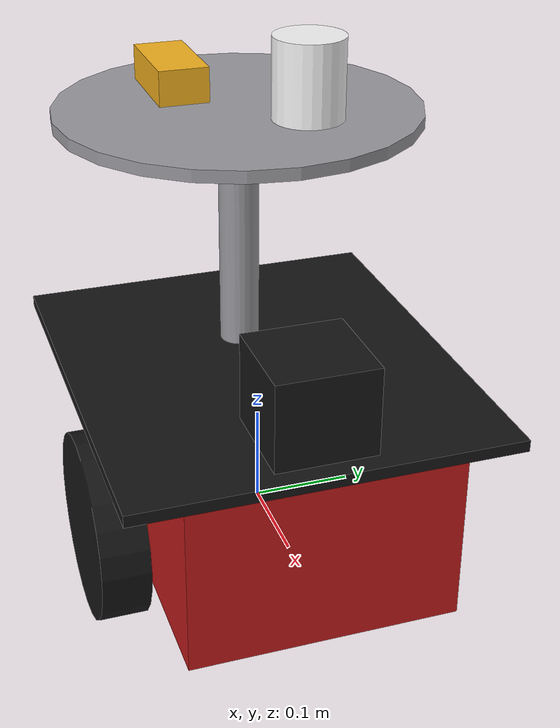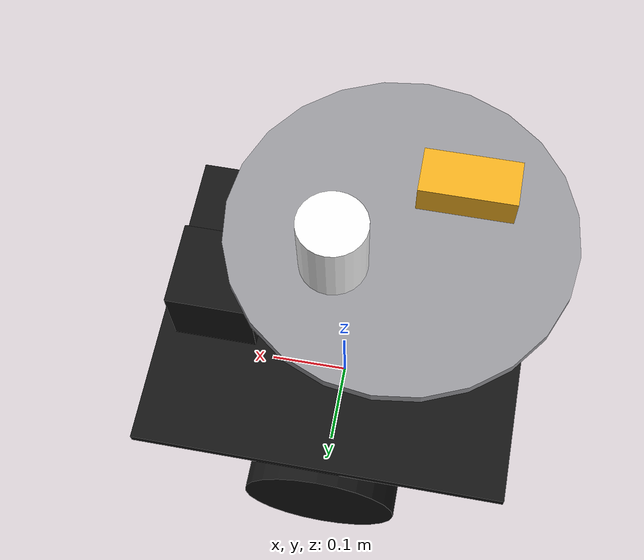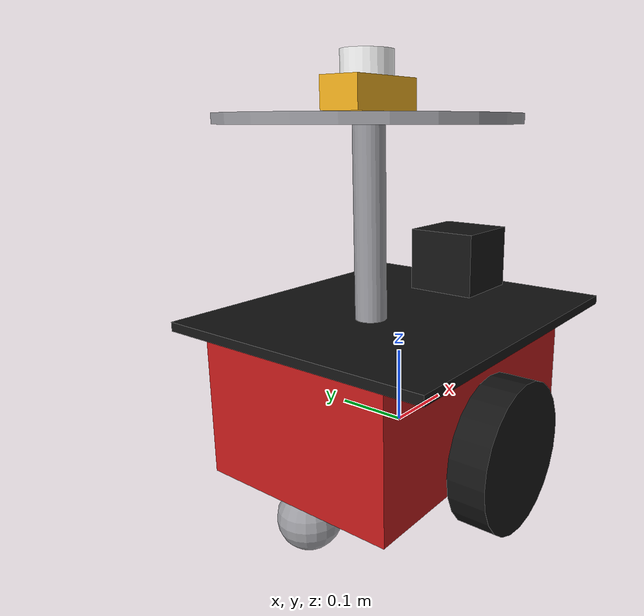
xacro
<?xml version="1.0"?>
<robot name="p3dx_garcom" xmlns:xacro="http://www.ros.org/wiki/xacro">

  <xacro:property name="raio_roda" value="0.0975"/>
  <xacro:property name="largura_roda" value="0.05"/>
  <xacro:property name="entre_rodas" value="0.33"/>
  <xacro:property name="raio_boba" value="0.04"/>

  <material name="vermelho"><color rgba="0.75 0.1 0.1 1"/></material>
  <material name="preto"><color rgba="0.08 0.08 0.08 1"/></material>
  <material name="cinza"><color rgba="0.6 0.6 0.62 1"/></material>
  <material name="branco"><color rgba="0.97 0.97 0.97 1"/></material>
  <material name="mostarda"><color rgba="0.95 0.69 0.12 1"/></material>

  <!-- inercia de uma caixa e de um cilindro (formulas da apostila) -->
  <xacro:macro name="inercia_caixa" params="m x y z">
    <inertial>
      <mass value="${m}"/>
      <inertia ixx="${m * (y*y + z*z) / 12}" ixy="0" ixz="0"
               iyy="${m * (x*x + z*z) / 12}" iyz="0" izz="${m * (x*x + y*y) / 12}"/>
    </inertial>
  </xacro:macro>
  <xacro:macro name="inercia_cilindro" params="m r h">
    <inertial>
      <mass value="${m}"/>
      <inertia ixx="${m * (3*r*r + h*h) / 12}" ixy="0" ixz="0"
               iyy="${m * (3*r*r + h*h) / 12}" iyz="0" izz="${m * r * r / 2}"/>
    </inertial>
  </xacro:macro>

  <!-- ===================== corpo ===================== -->
  <link name="base_link">
    <visual>
      <origin xyz="0 0 0.06"/>
      <geometry><box size="0.42 0.27 0.18"/></geometry>
      <material name="vermelho"/>
    </visual>
    <visual>
      <origin xyz="0 0 0.155"/>
      <geometry><box size="0.44 0.38 0.012"/></geometry>
      <material name="preto"/>
    </visual>
    <collision>
      <origin xyz="0 0 0.06"/>
      <geometry><box size="0.42 0.27 0.18"/></geometry>
    </collision>
    <!-- centro de massa um pouco atras das rodas: o robo se apoia nas rodas e na
         roda boba e nao tomba para a frente quando freia -->
    <inertial>
      <origin xyz="-0.06 0 0.03"/>
      <mass value="9.0"/>
      <inertia ixx="0.079" ixy="0" ixz="0" iyy="0.156" iyz="0" izz="0.187"/>
    </inertial>
  </link>

  <!-- ===================== rodas ===================== -->
  <xacro:macro name="roda" params="lado y">
    <link name="${lado}_wheel">
      <visual>
        <origin rpy="1.5708 0 0"/>
        <geometry><cylinder radius="${raio_roda}" length="${largura_roda}"/></geometry>
        <material name="preto"/>
      </visual>
      <collision>
        <origin rpy="1.5708 0 0"/>
        <geometry><cylinder radius="${raio_roda}" length="${largura_roda}"/></geometry>
      </collision>
      <xacro:inercia_cilindro m="0.5" r="${raio_roda}" h="${largura_roda}"/>
    </link>
    <!-- junta continua: o plugin de tracao diferencial gira esta roda -->
    <joint name="${lado}_wheel_joint" type="continuous">
      <parent link="base_link"/>
      <child link="${lado}_wheel"/>
      <origin xyz="0 ${y} 0"/>
      <axis xyz="0 1 0"/>
    </joint>
    <gazebo reference="${lado}_wheel">
      <material>Gazebo/Black</material>
      <mu1>1.0</mu1>
      <mu2>1.0</mu2>
      <kp>1000000.0</kp>
      <kd>1.0</kd>
    </gazebo>
  </xacro:macro>

  <xacro:roda lado="left" y="${entre_rodas / 2}"/>
  <xacro:roda lado="right" y="${-entre_rodas / 2}"/>

  <!-- roda boba atras (sem atrito, como no pioneer3dx.gazebo da aula) -->
  <link name="caster">
    <visual>
      <geometry><sphere radius="${raio_boba}"/></geometry>
      <material name="cinza"/>
    </visual>
    <collision>
      <geometry><sphere radius="${raio_boba}"/></geometry>
    </collision>
    <inertial>
      <mass value="0.1"/>
      <inertia ixx="0.0001" ixy="0" ixz="0" iyy="0.0001" iyz="0" izz="0.0001"/>
    </inertial>
  </link>
  <joint name="caster_joint" type="fixed">
    <parent link="base_link"/>
    <child link="caster"/>
    <origin xyz="-0.18 0 ${raio_boba - raio_roda}"/>
  </joint>
  <gazebo reference="caster">
    <material>Gazebo/Grey</material>
    <mu1>0.0</mu1>
    <mu2>0.0</mu2>
    <kp>1000000.0</kp>
    <kd>1.0</kd>
  </gazebo>

  <!-- ===================== laser ===================== -->
  <link name="laser_link">
    <visual>
      <origin xyz="0 0 -0.04"/>
      <geometry><box size="0.10 0.10 0.12"/></geometry>
      <material name="preto"/>
    </visual>
    <xacro:inercia_caixa m="0.3" x="0.10" y="0.10" z="0.12"/>
  </link>
  <joint name="laser_joint" type="fixed">
    <parent link="base_link"/>
    <child link="laser_link"/>
    <origin xyz="0.15 0 0.23"/>
  </joint>
  <gazebo reference="laser_link">
    <sensor type="ray" name="laser">
      <visualize>true</visualize>
      <update_rate>10</update_rate>
      <ray>
        <scan>
          <horizontal>
            <samples>181</samples>
            <resolution>1</resolution>
            <min_angle>-1.5708</min_angle>
            <max_angle>1.5708</max_angle>
          </horizontal>
        </scan>
        <range>
          <min>0.10</min>
          <max>8.0</max>
          <resolution>0.01</resolution>
        </range>
        <noise>
          <type>gaussian</type>
          <mean>0.0</mean>
          <stddev>0.01</stddev>
        </noise>
      </ray>
      <plugin name="laser_controller" filename="libgazebo_ros_laser.so">
        <topicName>/scan</topicName>
        <frameName>laser_link</frameName>
      </plugin>
    </sensor>
  </gazebo>

  <!-- ===================== bandeja ===================== -->
  <link name="tray">
    <visual>
      <origin xyz="0 0 0.12"/>
      <geometry><cylinder radius="0.02" length="0.24"/></geometry>
      <material name="cinza"/>
    </visual>
    <visual>
      <origin xyz="0 0 0.245"/>
      <geometry><cylinder radius="0.18" length="0.012"/></geometry>
      <material name="cinza"/>
    </visual>
    <!-- um cafe e um croissant em cima da bandeja -->
    <visual>
      <origin xyz="0.06 0.05 0.29"/>
      <geometry><cylinder radius="0.035" length="0.08"/></geometry>
      <material name="branco"/>
    </visual>
    <visual>
      <origin xyz="-0.06 -0.05 0.27"/>
      <geometry><box size="0.10 0.05 0.035"/></geometry>
      <material name="mostarda"/>
    </visual>
    <inertial>
      <origin xyz="0 0 0.2"/>
      <mass value="0.3"/>
      <inertia ixx="0.003" ixy="0" ixz="0" iyy="0.003" iyz="0" izz="0.005"/>
    </inertial>
  </link>
  <joint name="tray_joint" type="fixed">
    <parent link="base_link"/>
    <child link="tray"/>
    <origin xyz="-0.06 0 0.16"/>
  </joint>
  <gazebo reference="base_link">
    <material>Gazebo/Red</material>
  </gazebo>
  <gazebo reference="tray">
    <material>Gazebo/Grey</material>
  </gazebo>

  <!-- ===================== tracao diferencial ===================== -->
  <gazebo>
    <plugin name="differential_drive_controller" filename="libgazebo_ros_diff_drive.so">
      <rosDebugLevel>na</rosDebugLevel>
      <alwaysOn>true</alwaysOn>
      <updateRate>50</updateRate>
      <!-- legacyMode false: leftJoint e mesmo a roda esquerda -->
      <legacyMode>false</legacyMode>
      <leftJoint>left_wheel_joint</leftJoint>
      <rightJoint>right_wheel_joint</rightJoint>
      <wheelSeparation>${entre_rodas}</wheelSeparation>
      <wheelDiameter>${2 * raio_roda}</wheelDiameter>
      <wheelTorque>20</wheelTorque>
      <wheelAcceleration>0</wheelAcceleration>
      <commandTopic>cmd_vel</commandTopic>
      <odometryTopic>odom</odometryTopic>
      <odometryFrame>odom</odometryFrame>
      <odometrySource>world</odometrySource>
      <robotBaseFrame>base_link</robotBaseFrame>
      <publishTf>1</publishTf>
      <publishOdomTF>true</publishOdomTF>
      <publishWheelTF>false</publishWheelTF>
      <publishWheelJointState>true</publishWheelJointState>
    </plugin>
  </gazebo>
</robot>
